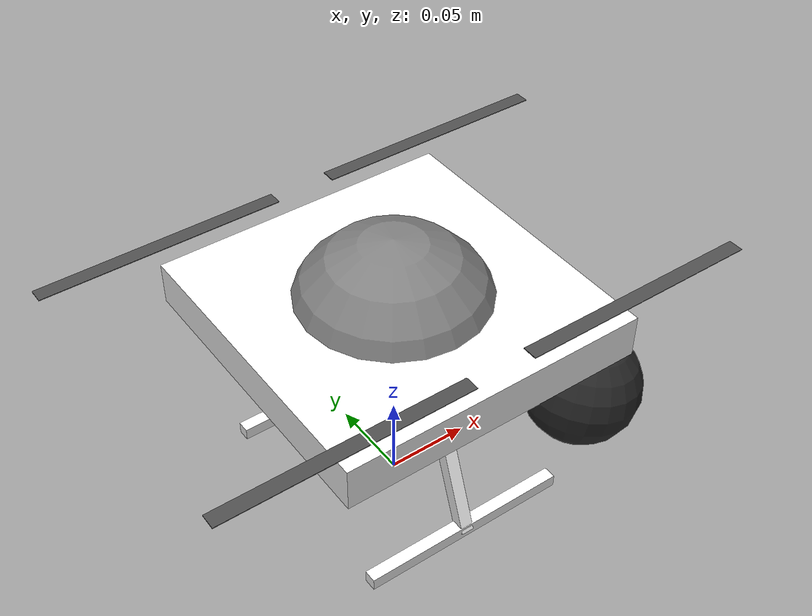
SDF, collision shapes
<?xml version="1.0" encoding="UTF-8"?>
<sdf version="1.9">
  <model name="x500_cave">

    <include merge="true">
      <uri>model://x500_base</uri>
    </include>

    <plugin filename="gz-sim-multicopter-motor-model-system"
            name="gz::sim::systems::MulticopterMotorModel">
      <jointName>rotor_0_joint</jointName>
      <linkName>rotor_0</linkName>
      <turningDirection>ccw</turningDirection>
      <timeConstantUp>0.0125</timeConstantUp>
      <timeConstantDown>0.025</timeConstantDown>
      <maxRotVelocity>1000.0</maxRotVelocity>
      <motorConstant>8.54858e-06</motorConstant>
      <momentConstant>0.016</momentConstant>
      <commandSubTopic>command/motor_speed</commandSubTopic>
      <motorNumber>0</motorNumber>
      <rotorDragCoefficient>8.06428e-05</rotorDragCoefficient>
      <rollingMomentCoefficient>1e-06</rollingMomentCoefficient>
      <rotorVelocitySlowdownSim>10</rotorVelocitySlowdownSim>
      <motorType>velocity</motorType>
    </plugin>
    <plugin filename="gz-sim-multicopter-motor-model-system"
            name="gz::sim::systems::MulticopterMotorModel">
      <jointName>rotor_1_joint</jointName>
      <linkName>rotor_1</linkName>
      <turningDirection>ccw</turningDirection>
      <timeConstantUp>0.0125</timeConstantUp>
      <timeConstantDown>0.025</timeConstantDown>
      <maxRotVelocity>1000.0</maxRotVelocity>
      <motorConstant>8.54858e-06</motorConstant>
      <momentConstant>0.016</momentConstant>
      <commandSubTopic>command/motor_speed</commandSubTopic>
      <motorNumber>1</motorNumber>
      <rotorDragCoefficient>8.06428e-05</rotorDragCoefficient>
      <rollingMomentCoefficient>1e-06</rollingMomentCoefficient>
      <rotorVelocitySlowdownSim>10</rotorVelocitySlowdownSim>
      <motorType>velocity</motorType>
    </plugin>
    <plugin filename="gz-sim-multicopter-motor-model-system"
            name="gz::sim::systems::MulticopterMotorModel">
      <jointName>rotor_2_joint</jointName>
      <linkName>rotor_2</linkName>
      <turningDirection>cw</turningDirection>
      <timeConstantUp>0.0125</timeConstantUp>
      <timeConstantDown>0.025</timeConstantDown>
      <maxRotVelocity>1000.0</maxRotVelocity>
      <motorConstant>8.54858e-06</motorConstant>
      <momentConstant>0.016</momentConstant>
      <commandSubTopic>command/motor_speed</commandSubTopic>
      <motorNumber>2</motorNumber>
      <rotorDragCoefficient>8.06428e-05</rotorDragCoefficient>
      <rollingMomentCoefficient>1e-06</rollingMomentCoefficient>
      <rotorVelocitySlowdownSim>10</rotorVelocitySlowdownSim>
      <motorType>velocity</motorType>
    </plugin>
    <plugin filename="gz-sim-multicopter-motor-model-system"
            name="gz::sim::systems::MulticopterMotorModel">
      <jointName>rotor_3_joint</jointName>
      <linkName>rotor_3</linkName>
      <turningDirection>cw</turningDirection>
      <timeConstantUp>0.0125</timeConstantUp>
      <timeConstantDown>0.025</timeConstantDown>
      <maxRotVelocity>1000.0</maxRotVelocity>
      <motorConstant>8.54858e-06</motorConstant>
      <momentConstant>0.016</momentConstant>
      <commandSubTopic>command/motor_speed</commandSubTopic>
      <motorNumber>3</motorNumber>
      <rotorDragCoefficient>8.06428e-05</rotorDragCoefficient>
      <rollingMomentCoefficient>1e-06</rollingMomentCoefficient>
      <rotorVelocitySlowdownSim>10</rotorVelocitySlowdownSim>
      <motorType>velocity</motorType>
    </plugin>

    <link name="lidar_link">
      <pose>0 0 0.11 0 0 0</pose>   <!-- 0.11 m above base_link CoM -->
      <inertial>
        <mass>0.001</mass>
        <inertia>
          <ixx>0.000001</ixx>  <ixy>0</ixy>  <ixz>0</ixz>
          <iyy>0.000001</iyy>  <iyz>0</iyz>
          <izz>0.000001</izz>
        </inertia>
      </inertial>
      <visual name="lidar_visual">
        <geometry>
          <cylinder>
            <radius>0.0516</radius>
            <length>0.0717</length>
          </cylinder>
        </geometry>
        <material>
          <ambient>0.4 0.4 0.4 1</ambient>
          <diffuse>0.5 0.5 0.5 1</diffuse>
        </material>
      </visual>
      <collision name="lidar_collision">
        <geometry>
          <sphere>
            <radius>0.06</radius>
          </sphere>
        </geometry>
      </collision>
      <sensor name="lidar" type="gpu_lidar">
        <update_rate>10</update_rate>
        <topic>/lidar/points</topic>
        <gz_frame_id>lidar_link</gz_frame_id>
        <lidar>
          <scan>
            <horizontal>
              <samples>1800</samples>
              <resolution>1</resolution>
              <min_angle>-3.14159265</min_angle>
              <max_angle> 3.14159265</max_angle>
            </horizontal>
            <vertical>
              <samples>16</samples>
              <resolution>1</resolution>
              <min_angle>-0.26179939</min_angle>  <!-- -15 deg -->
              <max_angle> 0.26179939</max_angle>  <!--  15 deg -->
            </vertical>
          </scan>
          <range>
            <min>0.1</min>
            <max>30.0</max>
            <resolution>0.001</resolution>
          </range>
          <noise>
            <type>gaussian</type>
            <mean>0.0</mean>
            <stddev>0.02</stddev>
          </noise>
        </lidar>
        <always_on>true</always_on>
        <visualize>false</visualize>
      </sensor>
    </link>
    <joint name="lidar_joint" type="fixed">
      <parent>base_link</parent>
      <child>lidar_link</child>
    </joint>

    <link name="depth_camera_link">
      <pose>0.15 0 -0.02 0 0.1745329 0</pose>  <!-- 15cm fwd, 2cm down, 10° pitch -->
      <inertial>
        <mass>0.001</mass>
        <inertia>
          <ixx>0.000001</ixx>  <ixy>0</ixy>  <ixz>0</ixz>
          <iyy>0.000001</iyy>  <iyz>0</iyz>
          <izz>0.000001</izz>
        </inertia>
      </inertial>
      <visual name="camera_visual">
        <geometry>
          <box><size>0.04 0.09 0.025</size></box>
        </geometry>
        <material>
          <ambient>0.1 0.1 0.1 1</ambient>
          <diffuse>0.15 0.15 0.15 1</diffuse>
        </material>
      </visual>
      <collision name="camera_collision">
        <geometry>
          <sphere>
            <radius>0.04</radius>
          </sphere>
        </geometry>
      </collision>
      <sensor name="depth_camera" type="depth_camera">
        <update_rate>15</update_rate>
        <topic>/depth_camera</topic>
        <gz_frame_id>depth_camera_link</gz_frame_id>
        <camera>
          <horizontal_fov>1.5184</horizontal_fov>  <!-- 87 deg -->
          <image>
            <width>640</width>
            <height>480</height>
            <format>R_FLOAT32</format>
          </image>
          <clip>
            <near>0.1</near>
            <far>10.0</far>
          </clip>
          <noise>
            <type>gaussian</type>
            <mean>0.0</mean>
            <stddev>0.01</stddev>
          </noise>
        </camera>
        <always_on>true</always_on>
        <visualize>true</visualize>
      </sensor>
    </link>
    <joint name="depth_camera_joint" type="fixed">
      <parent>base_link</parent>
      <child>depth_camera_link</child>
    </joint>

    <!-- Prop guard is now embedded directly in x500_base's base_link
         (collision name="prop_guard") to avoid mass-ratio instability. -->

  </model>
</sdf>

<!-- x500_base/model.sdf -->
<sdf version='1.9'>
  <model name='x500_base'>
    <pose>0 0 0.12 0 0 0</pose>
    <self_collide>false</self_collide>
    <static>false</static>
    <link name="base_link">
      <inertial>
        <mass>1.0</mass>
        <inertia>
          <ixx>0.005416666666666667</ixx>
          <ixy>0</ixy>
          <ixz>0</ixz>
          <iyy>0.005416666666666667</iyy>
          <iyz>0</iyz>
          <izz>0.010000000000000002</izz>
        </inertia>
      </inertial>
      <gravity>true</gravity>
      <velocity_decay/>
      <visual name="base_link_visual">
        <pose>0 0 0.0125 0 0 3.141592654</pose>
        <geometry>
          <mesh>
            <scale>0.5 0.5 0.5</scale>
            <uri>model://x500_base/meshes/NXP-HGD-CF.dae</uri>
          </mesh>
        </geometry>
      </visual>
      <visual name="5010_motor_base_0">
        <pose>0.087 0.087 0.016 0 0 -0.45</pose>
        <geometry>
          <mesh>
            <scale>0.5 0.5 0.5</scale>
            <uri>model://x500_base/meshes/5010Base.dae</uri>
          </mesh>
        </geometry>
      </visual>
      <visual name="5010_motor_base_1">
        <pose>-0.087 0.087 0.016 0 0 -0.45</pose>
        <geometry>
          <mesh>
            <scale>0.5 0.5 0.5</scale>
            <uri>model://x500_base/meshes/5010Base.dae</uri>
          </mesh>
        </geometry>
      </visual>
      <visual name="5010_motor_base_2">
        <pose>0.087 -0.087 0.016 0 0 -0.45</pose>
        <geometry>
          <mesh>
            <scale>0.5 0.5 0.5</scale>
            <uri>model://x500_base/meshes/5010Base.dae</uri>
          </mesh>
        </geometry>
      </visual>
      <visual name="5010_motor_base_3">
        <pose>-0.087 -0.087 0.016 0 0 -0.45</pose>
        <geometry>
          <mesh>
            <scale>0.5 0.5 0.5</scale>
            <uri>model://x500_base/meshes/5010Base.dae</uri>
          </mesh>
        </geometry>
      </visual>
      <visual name="NXP_FMUK66_FRONT">
        <pose>0.0235 0.0005 0.0215 1 0 1.57</pose>
        <cast_shadows>false</cast_shadows>
        <geometry>
          <plane>
            <normal>0 0 1</normal>
            <size>0.0065 0.0035</size>
          </plane>
        </geometry>
        <material>
          <diffuse>1.0 1.0 1.0</diffuse>
          <specular>1.0 1.0 1.0</specular>
          <pbr>
            <metal>
              <albedo_map>model://x500_base/materials/textures/nxp.png</albedo_map>
            </metal>
          </pbr>
        </material>
      </visual>
      <visual name="NXP_FMUK66_TOP">
        <pose>-0.0115 0 0.02575 0 0 -1.57</pose>
        <cast_shadows>false</cast_shadows>
        <geometry>
          <plane>
            <normal>0 0 1</normal>
            <size>0.0065 0.0035</size>
          </plane>
        </geometry>
        <material>
          <diffuse>1.0 1.0 1.0</diffuse>
          <specular>1.0 1.0 1.0</specular>
          <pbr>
            <metal>
              <albedo_map>model://x500_base/materials/textures/nxp.png</albedo_map>
            </metal>
          </pbr>
        </material>
      </visual>
      <visual name="RDDRONE_FMUK66_TOP">
        <pose>-0.015 0 0.02575 0 0 -1.57</pose>
        <cast_shadows>false</cast_shadows>
        <geometry>
          <plane>
            <normal>0 0 1</normal>
            <size>0.016 0.0017</size>
          </plane>
        </geometry>
        <material>
          <diffuse>1.0 1.0 1.0</diffuse>
          <specular>1.0 1.0 1.0</specular>
          <pbr>
            <metal>
              <albedo_map>model://x500_base/materials/textures/rd.png</albedo_map>
            </metal>
          </pbr>
        </material>
      </visual>
      <collision name="base_link_collision_0">
        <pose>0 0 0.0035 0 0 0</pose>
        <geometry>
          <box>
            <size>0.17677669529663686 0.17677669529663686 0.025</size>
          </box>
        </geometry>
        <surface>
          <contact>
            <ode>
              <min_depth>0.001</min_depth>
              <max_vel>0</max_vel>
            </ode>
          </contact>
          <friction>
            <ode/>
          </friction>
        </surface>
      </collision>
      <collision name="base_link_collision_1">
        <pose>0 -0.049 -0.0615 -0.35 0 0</pose>
        <geometry>
          <box>
            <size>0.0075 0.0075 0.105</size>
          </box>
        </geometry>
        <surface>
          <contact>
            <ode>
              <min_depth>0.001</min_depth>
              <max_vel>0</max_vel>
            </ode>
          </contact>
          <friction>
            <ode/>
          </friction>
        </surface>
      </collision>
      <collision name="base_link_collision_2">
        <pose>0 0.049 -0.0615 0.35 0 0</pose>
        <geometry>
          <box>
            <size>0.0075 0.0075 0.105</size>
          </box>
        </geometry>
        <surface>
          <contact>
            <ode>
              <min_depth>0.001</min_depth>
              <max_vel>0</max_vel>
            </ode>
          </contact>
          <friction>
            <ode/>
          </friction>
        </surface>
      </collision>
      <collision name="base_link_collision_3">
        <pose>0 -0.066 -0.10975 0 0 0</pose>
        <geometry>
          <box>
            <size>0.125 0.0075 0.0075</size>
          </box>
        </geometry>
        <surface>
          <contact>
            <ode>
              <min_depth>0.001</min_depth>
              <max_vel>0</max_vel>
            </ode>
          </contact>
          <friction>
            <ode/>
          </friction>
        </surface>
      </collision>
      <collision name="base_link_collision_4">
        <pose>0 0.066 -0.10975 0 0 0</pose>
        <geometry>
          <box>
            <size>0.125 0.0075 0.0075</size>
          </box>
        </geometry>
        <surface>
          <contact>
            <ode>
              <min_depth>0.001</min_depth>
              <max_vel>0</max_vel>
            </ode>
          </contact>
          <friction>
            <ode/>
          </friction>
        </surface>
      </collision>
      <sensor name="air_pressure_sensor" type="air_pressure">
        <always_on>1</always_on>
        <update_rate>50</update_rate>
        <air_pressure>
          <pressure>
            <noise type="gaussian">
              <mean>0</mean>
              <stddev>0.01</stddev>
            </noise>
          </pressure>
        </air_pressure>
      </sensor>
      <sensor name="imu_sensor" type="imu">
        <always_on>1</always_on>
        <update_rate>250</update_rate>
        <imu>
          <angular_velocity>
            <x>
              <noise type="gaussian">
                <mean>0</mean>
                <stddev>0.00018665</stddev>
                <dynamic_bias_stddev>3.8785e-05</dynamic_bias_stddev>
                <dynamic_bias_correlation_time>1000</dynamic_bias_correlation_time>
              </noise>
            </x>
            <y>
              <noise type="gaussian">
                <mean>0</mean>
                <stddev>0.00018665</stddev>
                <dynamic_bias_stddev>3.8785e-05</dynamic_bias_stddev>
                <dynamic_bias_correlation_time>1000</dynamic_bias_correlation_time>
              </noise>
            </y>
            <z>
              <noise type="gaussian">
                <mean>0</mean>
                <stddev>0.00018665</stddev>
                <dynamic_bias_stddev>3.8785e-05</dynamic_bias_stddev>
                <dynamic_bias_correlation_time>1000</dynamic_bias_correlation_time>
              </noise>
            </z>
          </angular_velocity>
          <linear_acceleration>
            <x>
              <noise type="gaussian">
                <mean>0</mean>
                <stddev>0.00186</stddev>
                <dynamic_bias_stddev>0.006</dynamic_bias_stddev>
                <dynamic_bias_correlation_time>300</dynamic_bias_correlation_time>
              </noise>
            </x>
            <y>
              <noise type="gaussian">
                <mean>0</mean>
                <stddev>0.00186</stddev>
                <dynamic_bias_stddev>0.006</dynamic_bias_stddev>
                <dynamic_bias_correlation_time>300</dynamic_bias_correlation_time>
              </noise>
            </y>
            <z>
              <noise type="gaussian">
                <mean>0</mean>
                <stddev>0.00186</stddev>
                <dynamic_bias_stddev>0.006</dynamic_bias_stddev>
                <dynamic_bias_correlation_time>300</dynamic_bias_correlation_time>
              </noise>
            </z>
          </linear_acceleration>
        </imu>
      </sensor>
      <sensor name="navsat_sensor" type="navsat">
        <always_on>1</always_on>
        <update_rate>30</update_rate>
      </sensor>
    </link>
    <link name="rotor_0">
      <gravity>true</gravity>
      <self_collide>false</self_collide>
      <velocity_decay/>
      <pose>0.087 -0.087 0.03 0 0 0</pose>
      <inertial>
          <mass>0.008038461538461538</mass>
          <inertia>
            <ixx>9.616227620998331e-08</ixx>
            <iyy>6.528962922925001e-06</iyy>
            <izz>6.62464558678501e-06</izz>
          </inertia>
        </inertial>
      <visual name="rotor_0_visual">
        <pose>-0.011 -0.07319230769230769 -0.008 0 0 0</pose>
        <geometry>
          <mesh>
            <scale>0.4230769230769231 0.4230769230769231 0.4230769230769231</scale>
            <uri>model://x500_base/meshes/1345_prop_ccw.stl</uri>
          </mesh>
        </geometry>
        <material>
          <script>
            <name>Gazebo/DarkGrey</name>
            <uri>file://media/materials/scripts/gazebo.material</uri>
          </script>
        </material>
      </visual>
      <visual name="rotor_0_visual_motor_bell">
        <pose>0 0 -0.016 0 0 0</pose>
        <geometry>
          <mesh>
            <scale>0.5 0.5 0.5</scale>
            <uri>model://x500_base/meshes/5010Bell.dae</uri>
          </mesh>
        </geometry>
      </visual>
      <collision name="rotor_0_collision">
        <pose>0 0 0 0 0 0 </pose>
        <geometry>
          <box>
            <size>0.1396153846153846 0.008461538461538461 0.0004230769230769231</size>
          </box>
        </geometry>
        <surface>
          <contact>
            <ode>
              <min_depth>0.001</min_depth>
              <max_vel>0</max_vel>
            </ode>
          </contact>
          <friction>
            <ode/>
          </friction>
        </surface>
      </collision>
    </link>
    <joint name="rotor_0_joint" type="revolute">
      <parent>base_link</parent>
      <child>rotor_0</child>
      <axis>
        <xyz>0 0 1</xyz>
        <limit>
          <lower>-1e+16</lower>
          <upper>1e+16</upper>
        </limit>
        <dynamics>
          <spring_reference>0</spring_reference>
          <spring_stiffness>0</spring_stiffness>
        </dynamics>
      </axis>
    </joint>
    <link name="rotor_1">
      <gravity>true</gravity>
      <self_collide>false</self_collide>
      <velocity_decay/>
      <pose>-0.087 0.087 0.03 0 0 0</pose>
      <inertial>
          <mass>0.008038461538461538</mass>
          <inertia>
            <ixx>9.616227620998331e-08</ixx>
            <iyy>6.528962922925001e-06</iyy>
            <izz>6.62464558678501e-06</izz>
          </inertia>
        </inertial>
      <visual name="rotor_1_visual">
        <pose>-0.011 -0.07319230769230769 -0.008 0 0 0</pose>
        <geometry>
          <mesh>
            <scale>0.4230769230769231 0.4230769230769231 0.4230769230769231</scale>
            <uri>model://x500_base/meshes/1345_prop_ccw.stl</uri>
          </mesh>
        </geometry>
        <material>
          <script>
            <name>Gazebo/DarkGrey</name>
            <uri>file://media/materials/scripts/gazebo.material</uri>
          </script>
        </material>
      </visual>
      <visual name="rotor_1_visual_motor_top">
        <pose>0 0 -0.016 0 0 0</pose>
        <geometry>
          <mesh>
            <scale>0.5 0.5 0.5</scale>
            <uri>model://x500_base/meshes/5010Bell.dae</uri>
          </mesh>
        </geometry>
      </visual>
      <collision name="rotor_1_collision">
        <pose>0 0 0 0 0 0 </pose>
        <geometry>
          <box>
            <size>0.1396153846153846 0.008461538461538461 0.0004230769230769231</size>
          </box>
        </geometry>
        <surface>
          <contact>
            <ode>
              <min_depth>0.001</min_depth>
              <max_vel>0</max_vel>
            </ode>
          </contact>
          <friction>
            <ode/>
          </friction>
        </surface>
      </collision>
    </link>
    <joint name="rotor_1_joint" type="revolute">
      <parent>base_link</parent>
      <child>rotor_1</child>
      <axis>
        <xyz>0 0 1</xyz>
        <limit>
          <lower>-1e+16</lower>
          <upper>1e+16</upper>
        </limit>
        <dynamics>
          <spring_reference>0</spring_reference>
          <spring_stiffness>0</spring_stiffness>
        </dynamics>
      </axis>
    </joint>
    <link name="rotor_2">
      <gravity>true</gravity>
      <self_collide>false</self_collide>
      <velocity_decay/>
      <pose>0.087 0.087 0.03 0 0 0</pose>
      <inertial>
          <mass>0.008038461538461538</mass>
          <inertia>
            <ixx>9.616227620998331e-08</ixx>
            <iyy>6.528962922925001e-06</iyy>
            <izz>6.62464558678501e-06</izz>
          </inertia>
        </inertial>
      <visual name="rotor_2_visual">
        <pose>-0.011 -0.07319230769230769 -0.008 0 0 0</pose>
        <geometry>
          <mesh>
            <scale>0.4230769230769231 0.4230769230769231 0.4230769230769231</scale>
            <uri>model://x500_base/meshes/1345_prop_cw.stl</uri>
          </mesh>
        </geometry>
        <material>
          <script>
            <name>Gazebo/DarkGrey</name>
            <uri>file://media/materials/scripts/gazebo.material</uri>
          </script>
        </material>
      </visual>
      <visual name="rotor_2_visual_motor_top">
        <pose>0 0 -0.016 0 0 0</pose>
        <geometry>
          <mesh>
            <scale>0.5 0.5 0.5</scale>
            <uri>model://x500_base/meshes/5010Bell.dae</uri>
          </mesh>
        </geometry>
      </visual>
      <collision name="rotor_2_collision">
        <pose>0 0 0 0 0 0 </pose>
        <geometry>
          <box>
            <size>0.1396153846153846 0.008461538461538461 0.0004230769230769231</size>
          </box>
        </geometry>
        <surface>
          <contact>
            <ode>
              <min_depth>0.001</min_depth>
              <max_vel>0</max_vel>
            </ode>
          </contact>
          <friction>
            <ode/>
          </friction>
        </surface>
      </collision>
    </link>
    <joint name="rotor_2_joint" type="revolute">
      <parent>base_link</parent>
      <child>rotor_2</child>
      <axis>
        <xyz>0 0 1</xyz>
        <limit>
          <lower>-1e+16</lower>
          <upper>1e+16</upper>
        </limit>
        <dynamics>
          <spring_reference>0</spring_reference>
          <spring_stiffness>0</spring_stiffness>
        </dynamics>
      </axis>
    </joint>
    <link name="rotor_3">
      <gravity>true</gravity>
      <self_collide>false</self_collide>
      <velocity_decay/>
      <pose>-0.087 -0.087 0.03 0 0 0</pose>
      <inertial>
          <mass>0.008038461538461538</mass>
          <inertia>
            <ixx>9.616227620998331e-08</ixx>
            <iyy>6.528962922925001e-06</iyy>
            <izz>6.62464558678501e-06</izz>
          </inertia>
        </inertial>
      <visual name="rotor_3_visual">
        <pose>-0.011 -0.07319230769230769 -0.008 0 0 0</pose>
        <geometry>
          <mesh>
            <scale>0.4230769230769231 0.4230769230769231 0.4230769230769231</scale>
            <uri>model://x500_base/meshes/1345_prop_cw.stl</uri>
          </mesh>
        </geometry>
        <material>
          <script>
            <name>Gazebo/DarkGrey</name>
            <uri>file://media/materials/scripts/gazebo.material</uri>
          </script>
        </material>
      </visual>
      <visual name="rotor_3_visual_motor_top">
        <pose>0 0 -0.016 0 0 0</pose>
        <geometry>
          <mesh>
            <scale>0.5 0.5 0.5</scale>
            <uri>model://x500_base/meshes/5010Bell.dae</uri>
          </mesh>
        </geometry>
      </visual>
      <collision name="rotor_3_collision">
        <pose>0 0 0 0 0 0 </pose>
        <geometry>
          <box>
            <size>0.1396153846153846 0.008461538461538461 0.0004230769230769231</size>
          </box>
        </geometry>
        <surface>
          <contact>
            <ode>
              <min_depth>0.001</min_depth>
              <max_vel>0</max_vel>
            </ode>
          </contact>
          <friction>
            <ode/>
          </friction>
        </surface>
      </collision>
    </link>
    <joint name="rotor_3_joint" type="revolute">
      <parent>base_link</parent>
      <child>rotor_3</child>
      <axis>
        <xyz>0 0 1</xyz>
        <limit>
          <lower>-1e+16</lower>
          <upper>1e+16</upper>
        </limit>
        <dynamics>
          <spring_reference>0</spring_reference>
          <spring_stiffness>0</spring_stiffness>
        </dynamics>
      </axis>
    </joint>
  </model>
</sdf>
